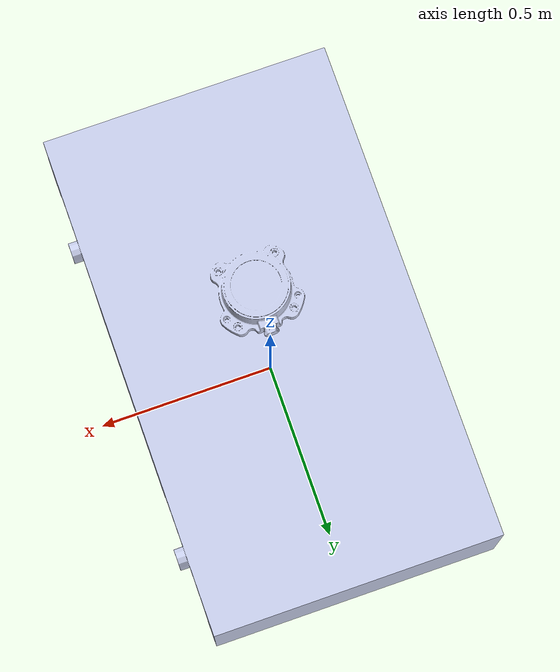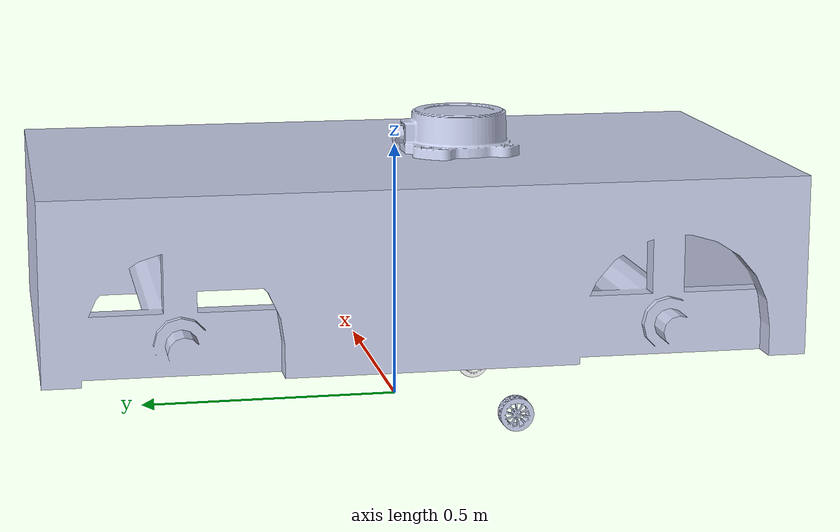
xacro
<?xml version="1.0" encoding="utf-8"?>
<robot name="robot_description" xmlns:xacro="http://ros.org/wiki/xacro">

  <link name="base_footprint"/>

  <joint name="base_joint" type="fixed">
    <parent link="base_footprint"/>
    <child link="base_link"/>
    <origin xyz="0.0 0.0 0.04" rpy="0 0 0"/>
  </joint>

  <!-- base link -->
  <link name="base_link">

    <inertial>
      <origin
        xyz="1.09282591403144E-05 -0.208443654641338 -0.0148943025021112" rpy="0 0 0" />
      <mass value="1.24979965944518" />
      <inertia
        ixx="0.00486451475924956"
        ixy="3.70495761186734E-09"
        ixz="-7.44118138807528E-11"
        iyy="0.00537090313594017"
        iyz="-2.51200938218995E-05"
        izz="0.00992821992821282" />
    </inertial>

    <visual>
      <origin xyz="0 0 0" rpy="0 0 0" />
      <geometry>
        <mesh filename="package://robot_description/meshes/base_link.stl" />
      </geometry>
      <material name="">
        <color rgba="0.792156862745098 0.819607843137255 0.933333333333333 1" />
      </material>
    </visual>
    <!--you need to change collision range after experiment-->>
    <collision>
      <origin xyz="0 0 0" rpy="0 0 0" />
      <geometry>
        <mesh filename="package://robot_description/meshes/base_link.stl" />
      </geometry>
    </collision>
  </link>

  <!-- lidar -->
  <link name="base_scan">

    <inertial>
      <origin
        xyz="7.89E-09 0.01946 -0.00012848" rpy="0 0 0" />
      <mass value="0.16606" />
      <inertia
        ixx="7.644E-05"
        ixy="3.8566E-12"
        ixz="-3.9607E-12"
        iyy="0.0001086"
        iyz="2.3374E-07"
        izz="7.6922E-05" />
    </inertial>

    <visual>
      <origin xyz="0 0 0" rpy="0 0 0" />
      <geometry>
        <mesh filename="package://robot_description/meshes/lidar.stl" />
      </geometry>
      <material name="">
        <color rgba="0.79216 0.81961 0.93333 1" />
      </material>
    </visual>

    <collision>
      <origin xyz="0 0 0" rpy="0 0 0" />
      <geometry>
        <mesh filename="package://robot_description/meshes/lidar.stl" />
      </geometry>
    </collision>
  </link>

  <joint name="scan_joint" type="fixed">
    <origin xyz="-0.0017476 -0.332 0.086" rpy="1.5708 0 0" />
    <parent link="base_link" />
    <child link="base_scan" />
  </joint>

  <link name="wheel_right_link">
    <inertial>
      <origin xyz="0.01362 1.1941E-07 -3.7685E-08" rpy="0 0 0" />
      <mass value="0.049662" />
      <inertia
        ixx="3.5079E-05"
        ixy="-1.5541E-11"
        ixz="3.8986E-11"
        iyy="2.0338E-05"
        iyz="9.4448E-11"
        izz="2.0338E-05" />
    </inertial>
    <visual>
      <origin xyz="0 0 0" rpy="0 0 0" />
      <geometry>
        <mesh filename="package://robot_description/meshes/right.stl" />
      </geometry>
      <material name="">
        <color rgba="0.79216 0.81961 0.93333 1" />
      </material>
    </visual>
    <collision>
      <origin xyz="0 0 0" rpy="0 0 0" />
      <geometry>
        <mesh filename="package://robot_description/meshes/right.stl" />
      </geometry>
    </collision>
  </link>

  <joint name="wheel_right_joint" type="continuous">
    <origin xyz="-0.186 -0.2 -0.0357" rpy="-0.21892 0 3.1416" />
    <parent link="base_link" />
    <child link="wheel_right_link" />
    <axis xyz="1 0 0" />
  </joint>

  <link name="wheel_left_link">
    <inertial>
      <origin xyz="0 0 0" rpy="0 0 0" />
      <mass value="0" />
      <inertia
        ixx="0"
        ixy="0"
        ixz="0"
        iyy="0"
        iyz="0"
        izz="0" />
    </inertial>
    <visual>
      <origin xyz="0 0 0" rpy="0 0 0" />
      <geometry>
        <mesh filename="package://robot_description/meshes/left.stl" />
      </geometry>
      <material name="">
        <color
          rgba="1 1 1 1" />
      </material>
    </visual>
    <collision>
      <origin xyz="0 0 0" rpy="0 0 0" />
      <geometry>
        <mesh filename="package://robot_description/meshes/left.stl" />
      </geometry>
    </collision>
  </link>

  <joint name="wheel_left_joint" type="continuous">
    <origin xyz="0.186 -0.2 -0.0357" rpy="-1.2852 0 0" />
    <parent link="base_link" />
    <child link="wheel_left_link" />
    <axis xyz="1 0 0" />
  </joint>

</robot>
